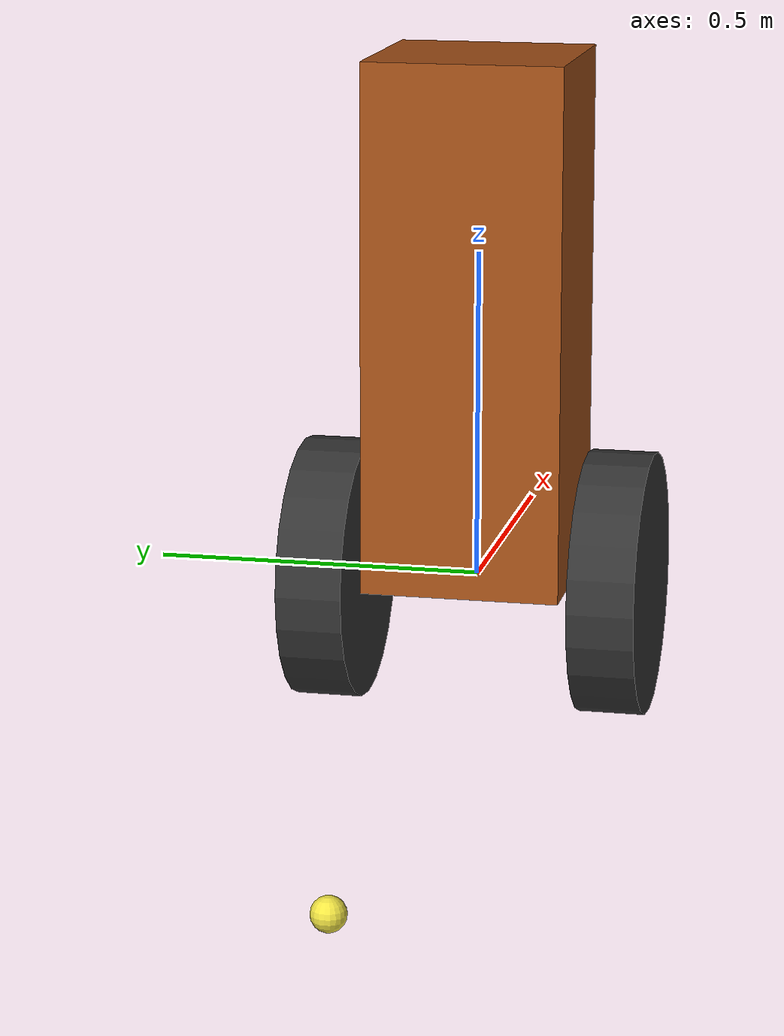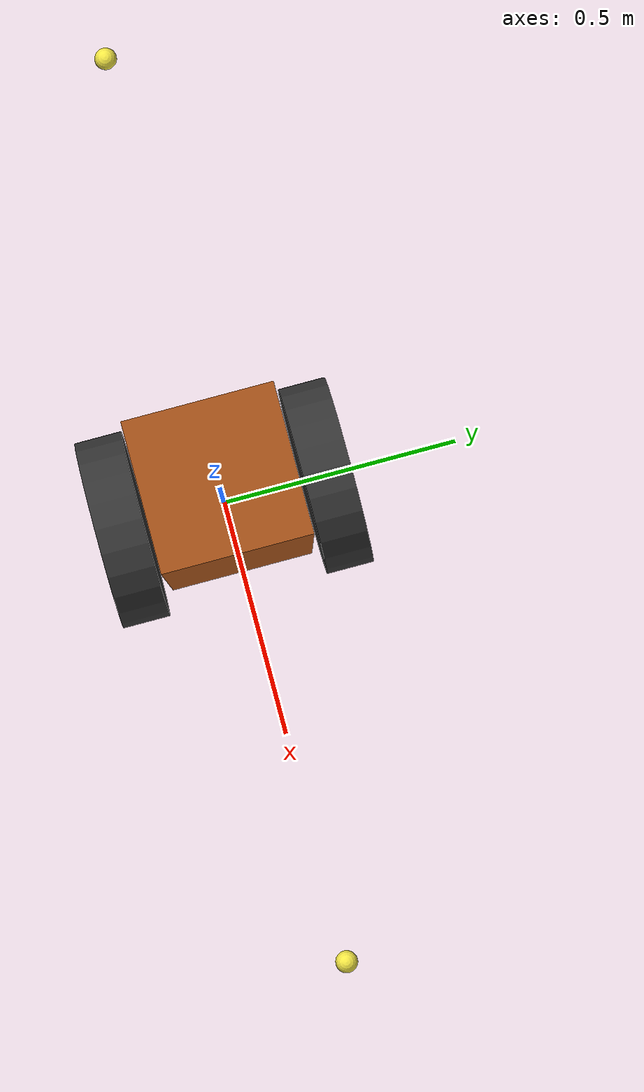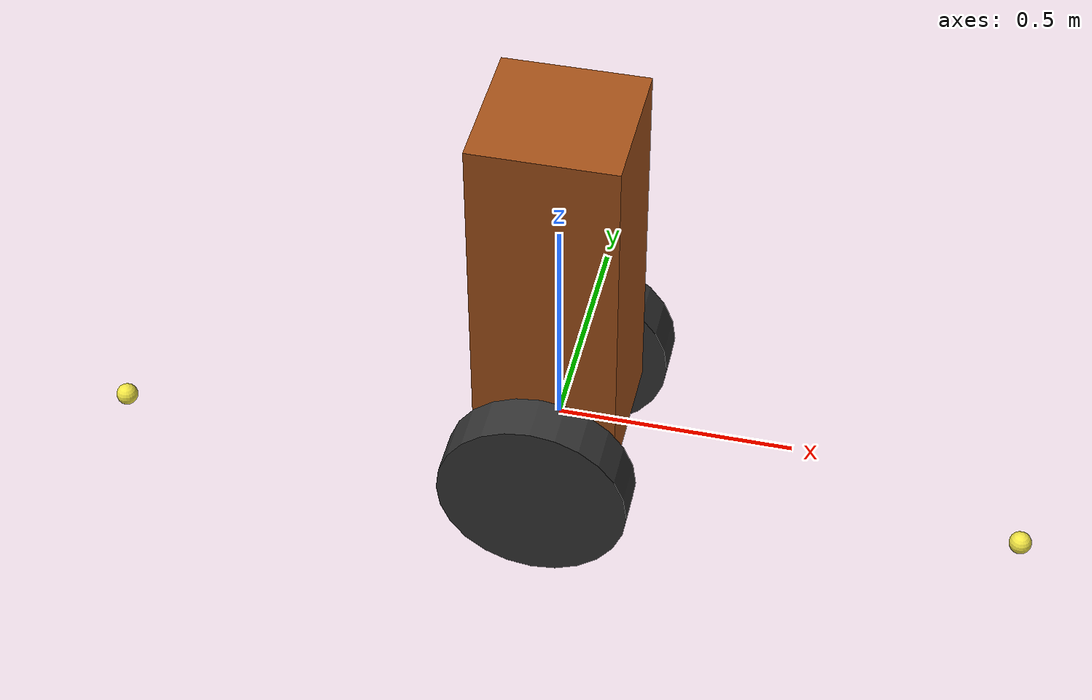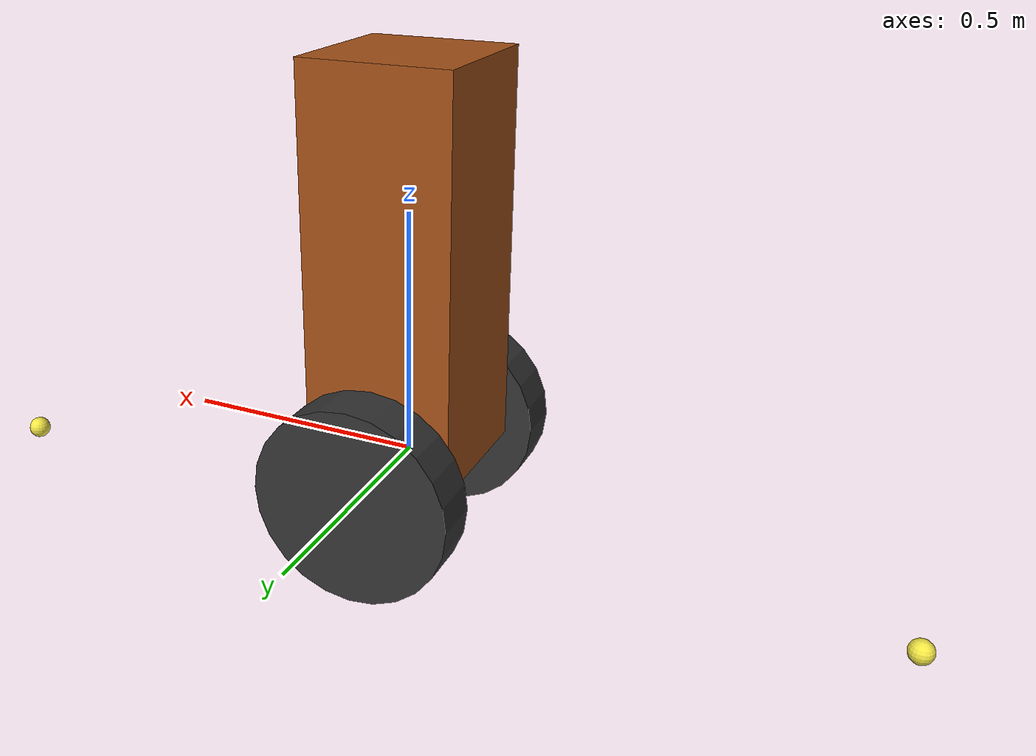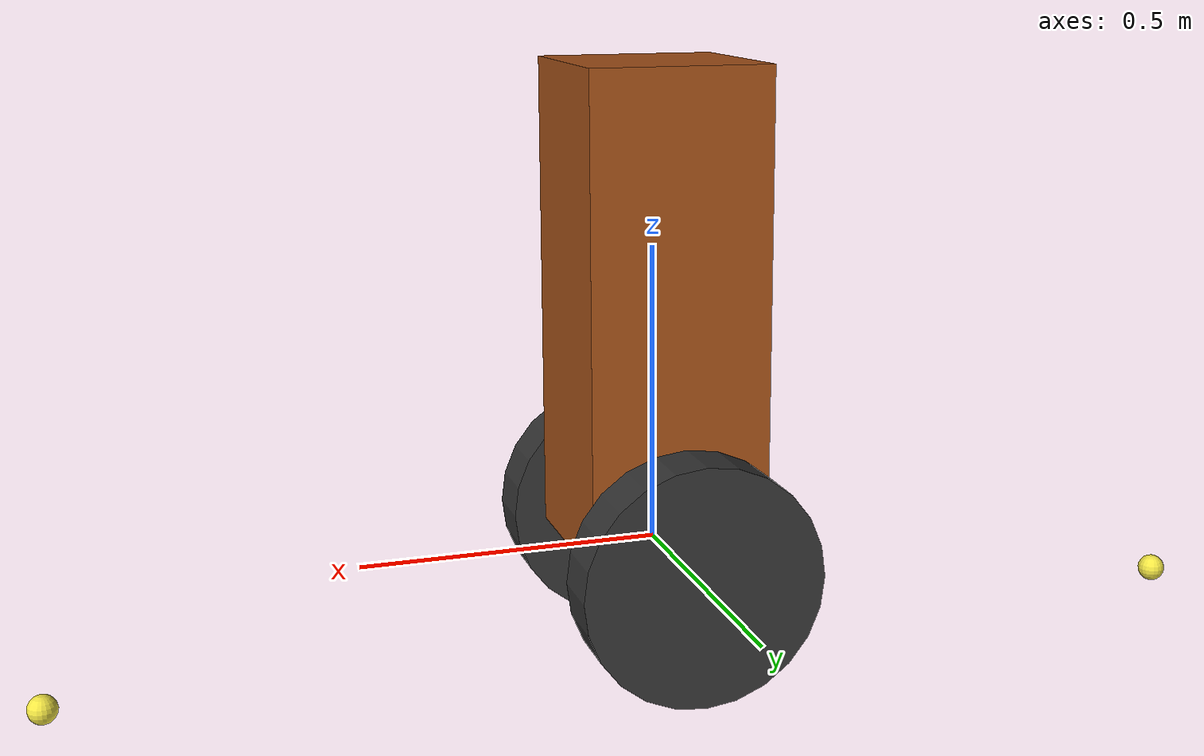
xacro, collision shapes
<?xml version="1.0"?>
<robot name="teeterbot" xmlns:xacro="http://www.ros.org/wiki/xacro">
  <xacro:include filename="$(find teeterbot_description)/urdf/teeterbot_friction.urdf"/>

  <xacro:arg name="pub_ground_truth" default="0" />
  <xacro:arg name="auto_reset_orientation" default="0" />
  <xacro:arg name="auto_reset_delay" default="2.0" />

  <xacro:arg name="wheel_mass" default="1.0" />
  <xacro:arg name="wheel_radius" default="0.2" />
  <xacro:arg name="body_mass" default="10.0" />
  <xacro:arg name="body_width" default="0.3" />
  <xacro:arg name="body_depth" default="0.3" />
  <xacro:arg name="body_length" default="0.8" />
  <xacro:arg name="training_wheels" default="true" />

  <xacro:property name="wheel_mass" value="$(arg wheel_mass)" />
  <xacro:property name="wheel_radius" value="$(arg wheel_radius)" />
  <xacro:property name="wheel_thickness" value="0.1" />
  <xacro:property name="wheelbase" value="${0.2 + body_width}" />

  <xacro:property name="body_mass" value="$(arg body_mass)" />
  <xacro:property name="body_width" value="$(arg body_width)" />
  <xacro:property name="body_depth" value="$(arg body_depth)" />
  <xacro:property name="body_length" value="$(arg body_length)" />

  <gazebo>
    <plugin name="hector_gazebo_imu" filename="libhector_gazebo_ros_imu.so">
      <bodyName>body_com</bodyName>
      <topicName>imu</topicName>
      <gaussianNoise>0.0</gaussianNoise>
      <xyzOffset>0 0 0</xyzOffset>
      <rpyOffset>0 0 0</rpyOffset>
    </plugin>
    <plugin name="teeterbot_interface" filename="libteeterbot_gazebo_plugin.so">
      <pubGroundTruth>$(arg pub_ground_truth)</pubGroundTruth>
      <autoResetOrientation>$(arg auto_reset_orientation)</autoResetOrientation>
      <autoResetDelay>$(arg auto_reset_delay)</autoResetDelay>
      <bodyLength>$(arg body_length)</bodyLength>
      <voltageMode>$(arg voltage_mode)</voltageMode>
      <torqueMode>$(arg torque_mode)</torqueMode>
      <speedMode>$(arg speed_mode)</speedMode>
    </plugin>
    <plugin name="joint_state_publisher" filename="libgazebo_ros_joint_state_publisher.so">
      <robotNamespace>$(arg robot_name)</robotNamespace>
      <jointName>
          left_wheel, right_wheel
      </jointName>
      <updateRate>100</updateRate>
      <alwaysOn>true</alwaysOn>
    </plugin>
  </gazebo>

  <xacro:macro name="wheel" params="name y_offset z_offset *link_pose">
    <link name="${name}" >
      <inertial>
        <origin xyz="0 0 0" rpy="0 0 0"/>
        <mass value="${wheel_mass}"/>
        <inertia ixx="${wheel_mass/12*(3*wheel_radius*wheel_radius + wheel_thickness*wheel_thickness)}" ixy="0" ixz="0" iyy="${wheel_mass/12*(3*wheel_radius*wheel_radius + wheel_thickness*wheel_thickness)}" iyz="0" izz="${wheel_mass/2 * wheel_radius*wheel_radius}"/>
      </inertial>
      <visual>
        <origin xyz="0 0 ${z_offset}" rpy="0 0 0"/>
        <geometry>
          <cylinder radius="${wheel_radius}" length="${wheel_thickness}"/>
        </geometry>
        <material name="grey"/>
      </visual>
      <visual>
        <xacro:insert_block name="link_pose" />
        <geometry>
            <mesh filename="package://teeterbot_description/meshes/wheel.STL"/>
        </geometry>
        <material name="grey"/>
      </visual>
      <collision name="collision_${name}">
        <origin xyz="0 0 ${z_offset}" rpy="0 0 0"/>
        <geometry>
          <cylinder radius="${wheel_radius}" length="${wheel_thickness}"/>
        </geometry>
      </collision>
    </link>
    <joint name="${name}" type="continuous">
      <origin xyz="0 ${y_offset} 0" rpy="-1.570796 0 0"/>
      <parent link="base_link"/>
      <child link="${name}"/>
      <axis xyz="0 0 1" />
    </joint>
  </xacro:macro>

  <wheel name="left_wheel" y_offset="${wheelbase/2}" z_offset="-0.03" >
    <origin xyz="0 0.06 -0.37" rpy="0 3.1415 0"/>
  </wheel>
  <wheel name="right_wheel" y_offset="${-wheelbase/2}" z_offset="0.03">
    <origin xyz="0 0.06 0.37" rpy="0 0 0"/>
  </wheel>

  <link name="body_com">
    <inertial>
      <origin xyz="0 0 0" rpy="0 0 0"/>
      <mass value="${body_mass}"/>
      <inertia ixx="${body_mass/12 * (body_width*body_width + body_length*body_length)}" ixy="0" ixz="0" iyy="${body_mass/12 * (body_length*body_length + body_depth*body_depth)}" iyz="0" izz="${body_mass/12 * (body_width*body_width + body_depth*body_depth)}"/>
    </inertial>
    <visual>
      <origin xyz="0 0 -${body_length/2 - 0.051225}" rpy="0 0 0"/>
        <geometry>
            <mesh filename="package://teeterbot_description/meshes/base.STL"/>
        </geometry>
      <material name="orange"/>
    </visual>
    <collision name="collision_chassis">
      <origin xyz="0 0 0" rpy="0 0 0"/>
      <geometry>
        <box size="${body_depth} ${body_width} ${body_length}"/>
      </geometry>
    </collision>
  </link>

  <link name="base_link">
    <inertial>
      <origin xyz="0 0 0" rpy="0 0 0"/>
      <mass value="0.01"/>
      <inertia ixx="0.01" ixy="0" ixz="0" iyy="0.01" iyz="0" izz="0.01"/>
    </inertial>
    <xacro:if value="$(arg training_wheels)" >
      <collision name="training_wheel_1">
        <origin xyz="1 0 ${0.025-wheel_radius}" rpy="0 0 0"/>
        <geometry>
          <sphere radius="0.024"/>
        </geometry>
      </collision>
      <collision name="training_wheel_2">
        <origin xyz="-1 0 ${0.025-wheel_radius}" rpy="0 0 0"/>
        <geometry>
          <sphere radius="0.024"/>
        </geometry>
      </collision>
    </xacro:if>
  </link>

  <joint name="base_com" type="fixed">
    <origin xyz="0 0 ${body_length/2}" rpy="0 0 0"/>
    <parent link="base_link"/>
    <child link="body_com"/>
  </joint>

  <material name="grey">
    <color rgba="0.2 0.2 0.2 1.0"/>
  </material>

  <material name="orange">
    <color rgba="0.64 0.313939 0.095351 1.0"/>
  </material>
</robot>
